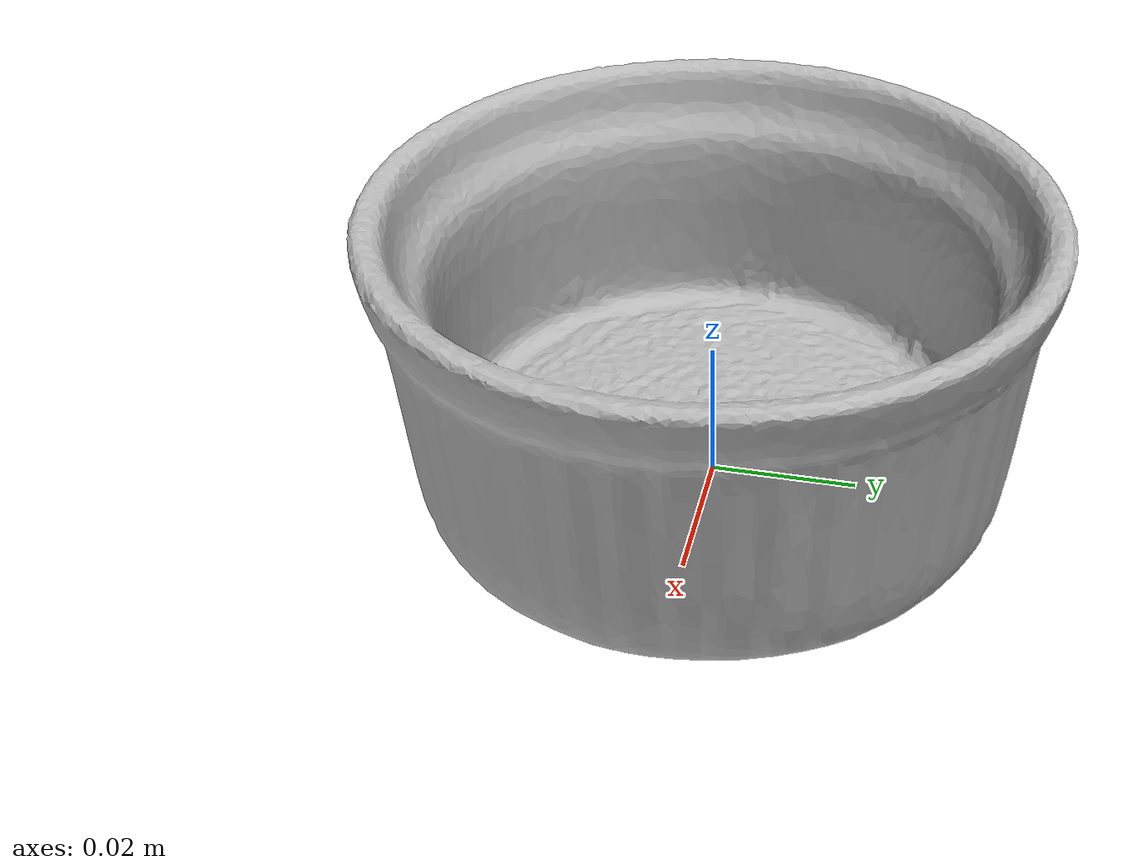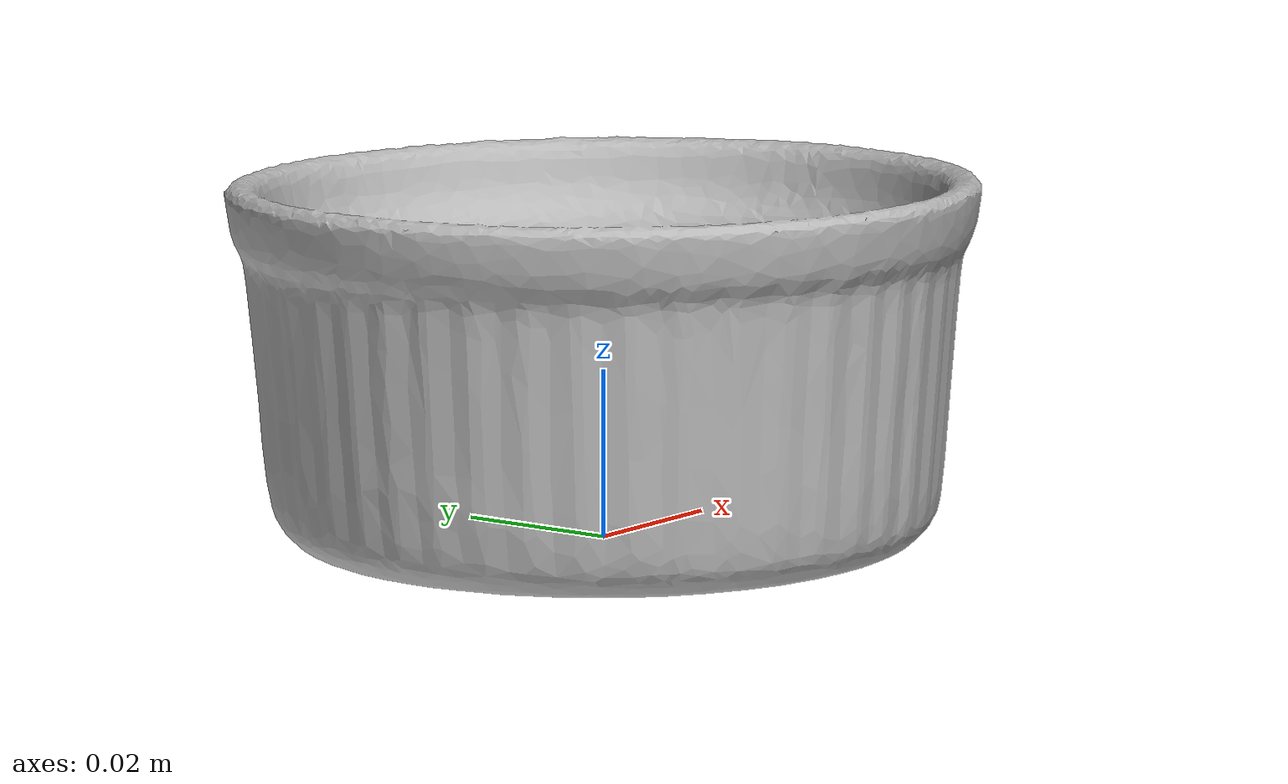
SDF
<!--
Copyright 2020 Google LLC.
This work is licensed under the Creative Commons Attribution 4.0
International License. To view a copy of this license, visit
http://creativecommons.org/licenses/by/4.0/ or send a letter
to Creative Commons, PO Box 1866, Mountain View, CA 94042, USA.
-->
<?xml version="1.0" ?>
<sdf version="1.6">
  <model name="BIA_Porcelain_Ramekin_With_Glazed_Rim_35_45_oz_cup">
    <link name="link_0">
      <visual name="visual">
        <geometry>
          <mesh>
            <uri>meshes/model.obj</uri>
          </mesh>
        </geometry>
      </visual>
      <collision name="collision_0">
        <geometry>
          <mesh>
            <uri>meshes/model.obj</uri>
          </mesh>
        </geometry>
      </collision>
    </link>
  </model>
</sdf>
